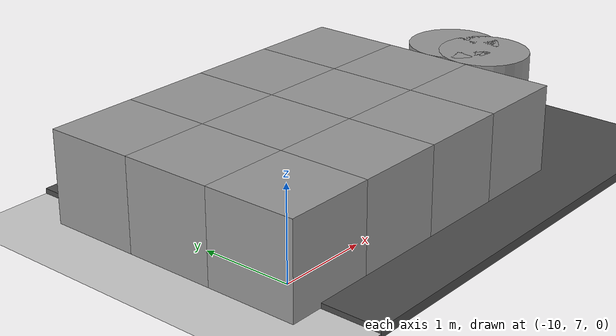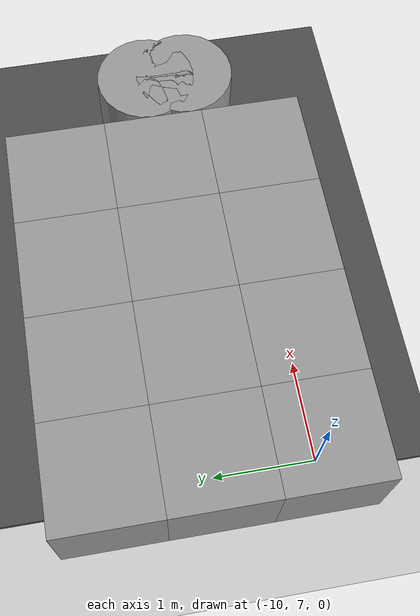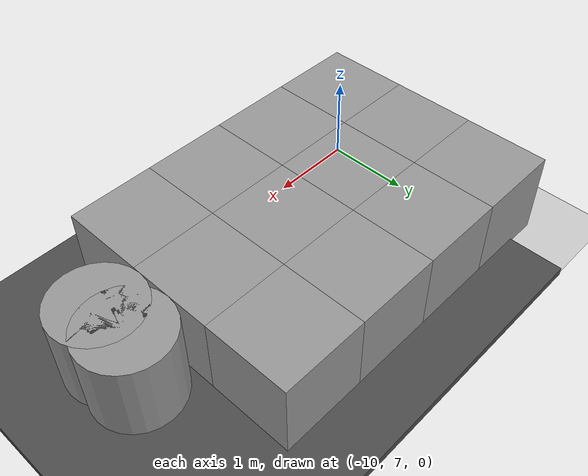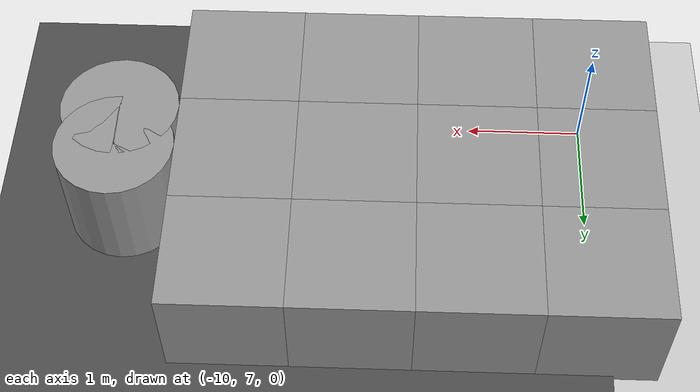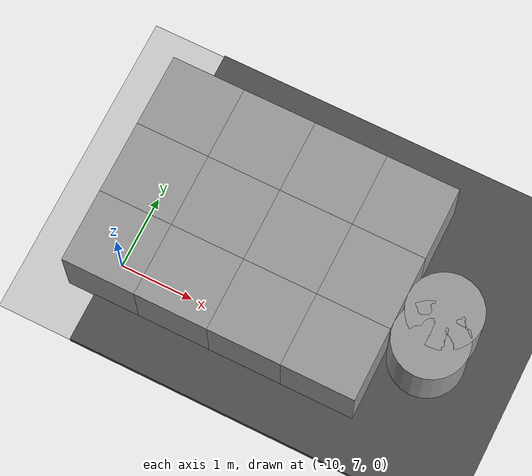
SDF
<sdf version="1.6">
 <world name="default">
  <model name="ground_plane">
   <static>1</static>
   <link name="link">
    <collision name="collision">
     <geometry><plane><normal>0 0 1</normal><size>100 100</size></plane></geometry>
     <surface><friction><ode><mu>100</mu><mu2>50</mu2></ode></friction></surface>
    </collision>
    <visual name="visual">
     <cast_shadows>0</cast_shadows>
     <geometry><plane><normal>0 0 1</normal><size>100 100</size></plane></geometry>
     <material>
      <script><uri>file://media/materials/scripts/gazebo.material</uri><name>Gazebo/Grey</name></script>
     </material>
    </visual>
   </link>
  </model>
  <model name="asphalt_plane">
   <static>1</static>
   <link name="link">
    <collision name="collision"><geometry><box><size>20 20 0.1</size></box></geometry></collision>
    <visual name="visual">
     <cast_shadows>0</cast_shadows>
     <geometry><box><size>20 20 0.1</size></box></geometry>
     <material>
      <script>
       <uri>model://asphalt_plane/materials/scripts</uri>
       <uri>model://asphalt_plane/materials/textures</uri>
       <name>vrc/asphalt</name>
      </script>
     </material>
    </visual>
   </link>
   <pose>-0.132526 12.4193 0 0 -0 0</pose>
  </model>
  <model name="car_0">
   <link name="link_0">
    <pose>-0.5 -0.883748 0 0 -0 0</pose>
    <inertial>
     <mass>1</mass>
     <inertia>
      <ixx>0.166667</ixx>
      <ixy>0</ixy>
      <ixz>0</ixz>
      <iyy>0.166667</iyy>
      <iyz>0</iyz>
      <izz>0.166667</izz>
     </inertia>
    </inertial>
    <visual name="visual">
     <geometry><box><size>1 1 1</size></box></geometry>
     <material>
      <lighting>1</lighting>
      <script><uri>file://media/materials/scripts/gazebo.material</uri><name>Gazebo/Grey</name></script>
      <ambient>0.3 0.3 0.3 1</ambient>
      <diffuse>0.7 0.7 0.7 1</diffuse>
      <specular>0.01 0.01 0.01 1</specular>
      <emissive>0 0 0 1</emissive>
     </material>
    </visual>
    <collision name="collision">
     <geometry><box><size>1 1 1</size></box></geometry>
     <surface>
      <friction>
       <ode><mu>1</mu><mu2>1</mu2><fdir1>0 0 0</fdir1><slip1>0</slip1><slip2>0</slip2></ode>
       <torsional>
        <coefficient>1</coefficient>
        <patch_radius>0</patch_radius>
        <surface_radius>0</surface_radius>
        <use_patch_radius>1</use_patch_radius>
        <ode><slip>0</slip></ode>
       </torsional>
      </friction>
      <bounce><restitution_coefficient>0</restitution_coefficient><threshold>1e+06</threshold></bounce>
      <contact>
       <collide_without_contact>0</collide_without_contact>
       <collide_without_contact_bitmask>1</collide_without_contact_bitmask>
       <collide_bitmask>1</collide_bitmask>
       <ode>
        <soft_cfm>0</soft_cfm>
        <soft_erp>0.2</soft_erp>
        <kp>1e+13</kp>
        <kd>1</kd>
        <max_vel>0.01</max_vel>
        <min_depth>0</min_depth>
       </ode>
       <bullet>
        <split_impulse>1</split_impulse>
        <split_impulse_penetration_threshold>-0.01</split_impulse_penetration_threshold>
        <soft_cfm>0</soft_cfm>
        <soft_erp>0.2</soft_erp>
        <kp>1e+13</kp>
        <kd>1</kd>
       </bullet>
      </contact>
     </surface>
    </collision>
   </link>
   <link name="link_1">
    <pose>0.5 -0.883748 0 0 -0 0</pose>
    <inertial>
     <mass>1</mass>
     <inertia>
      <ixx>0.166667</ixx>
      <ixy>0</ixy>
      <ixz>0</ixz>
      <iyy>0.166667</iyy>
      <iyz>0</iyz>
      <izz>0.166667</izz>
     </inertia>
    </inertial>
    <visual name="visual">
     <geometry><box><size>1 1 1</size></box></geometry>
     <material>
      <lighting>1</lighting>
      <script><uri>file://media/materials/scripts/gazebo.material</uri><name>Gazebo/Grey</name></script>
      <ambient>0.3 0.3 0.3 1</ambient>
      <diffuse>0.7 0.7 0.7 1</diffuse>
      <specular>0.01 0.01 0.01 1</specular>
      <emissive>0 0 0 1</emissive>
     </material>
    </visual>
    <collision name="collision">
     <geometry><box><size>1 1 1</size></box></geometry>
     <surface>
      <friction>
       <ode><mu>1</mu><mu2>1</mu2><fdir1>0 0 0</fdir1><slip1>0</slip1><slip2>0</slip2></ode>
       <torsional>
        <coefficient>1</coefficient>
        <patch_radius>0</patch_radius>
        <surface_radius>0</surface_radius>
        <use_patch_radius>1</use_patch_radius>
        <ode><slip>0</slip></ode>
       </torsional>
      </friction>
      <bounce><restitution_coefficient>0</restitution_coefficient><threshold>1e+06</threshold></bounce>
      <contact>
       <collide_without_contact>0</collide_without_contact>
       <collide_without_contact_bitmask>1</collide_without_contact_bitmask>
       <collide_bitmask>1</collide_bitmask>
       <ode>
        <soft_cfm>0</soft_cfm>
        <soft_erp>0.2</soft_erp>
        <kp>1e+13</kp>
        <kd>1</kd>
        <max_vel>0.01</max_vel>
        <min_depth>0</min_depth>
       </ode>
       <bullet>
        <split_impulse>1</split_impulse>
        <split_impulse_penetration_threshold>-0.01</split_impulse_penetration_threshold>
        <soft_cfm>0</soft_cfm>
        <soft_erp>0.2</soft_erp>
        <kp>1e+13</kp>
        <kd>1</kd>
       </bullet>
      </contact>
     </surface>
    </collision>
   </link>
   <link name="link_12">
    <pose>-1.5 0.11625 0 0 -0 0</pose>
    <inertial>
     <mass>1</mass>
     <inertia>
      <ixx>0.166667</ixx>
      <ixy>0</ixy>
      <ixz>0</ixz>
      <iyy>0.166667</iyy>
      <iyz>0</iyz>
      <izz>0.166667</izz>
     </inertia>
    </inertial>
    <visual name="visual">
     <geometry><box><size>1 1 1</size></box></geometry>
     <material>
      <lighting>1</lighting>
      <script><uri>file://media/materials/scripts/gazebo.material</uri><name>Gazebo/Grey</name></script>
      <ambient>0.3 0.3 0.3 1</ambient>
      <diffuse>0.7 0.7 0.7 1</diffuse>
      <specular>0.01 0.01 0.01 1</specular>
      <emissive>0 0 0 1</emissive>
     </material>
    </visual>
    <collision name="collision">
     <geometry><box><size>1 1 1</size></box></geometry>
     <surface>
      <friction>
       <ode><mu>1</mu><mu2>1</mu2><fdir1>0 0 0</fdir1><slip1>0</slip1><slip2>0</slip2></ode>
       <torsional>
        <coefficient>1</coefficient>
        <patch_radius>0</patch_radius>
        <surface_radius>0</surface_radius>
        <use_patch_radius>1</use_patch_radius>
        <ode><slip>0</slip></ode>
       </torsional>
      </friction>
      <bounce><restitution_coefficient>0</restitution_coefficient><threshold>1e+06</threshold></bounce>
      <contact>
       <collide_without_contact>0</collide_without_contact>
       <collide_without_contact_bitmask>1</collide_without_contact_bitmask>
       <collide_bitmask>1</collide_bitmask>
       <ode>
        <soft_cfm>0</soft_cfm>
        <soft_erp>0.2</soft_erp>
        <kp>1e+13</kp>
        <kd>1</kd>
        <max_vel>0.01</max_vel>
        <min_depth>0</min_depth>
       </ode>
       <bullet>
        <split_impulse>1</split_impulse>
        <split_impulse_penetration_threshold>-0.01</split_impulse_penetration_threshold>
        <soft_cfm>0</soft_cfm>
        <soft_erp>0.2</soft_erp>
        <kp>1e+13</kp>
        <kd>1</kd>
       </bullet>
      </contact>
     </surface>
    </collision>
   </link>
   <link name="link_13">
    <pose>1.5 1.11625 0 0 -0 0</pose>
    <inertial>
     <mass>1</mass>
     <inertia>
      <ixx>0.166667</ixx>
      <ixy>0</ixy>
      <ixz>0</ixz>
      <iyy>0.166667</iyy>
      <iyz>0</iyz>
      <izz>0.166667</izz>
     </inertia>
    </inertial>
    <visual name="visual">
     <geometry><box><size>1 1 1</size></box></geometry>
     <material>
      <lighting>1</lighting>
      <script><uri>file://media/materials/scripts/gazebo.material</uri><name>Gazebo/Grey</name></script>
      <ambient>0.3 0.3 0.3 1</ambient>
      <diffuse>0.7 0.7 0.7 1</diffuse>
      <specular>0.01 0.01 0.01 1</specular>
      <emissive>0 0 0 1</emissive>
     </material>
    </visual>
    <collision name="collision">
     <geometry><box><size>1 1 1</size></box></geometry>
     <surface>
      <friction>
       <ode><mu>1</mu><mu2>1</mu2><fdir1>0 0 0</fdir1><slip1>0</slip1><slip2>0</slip2></ode>
       <torsional>
        <coefficient>1</coefficient>
        <patch_radius>0</patch_radius>
        <surface_radius>0</surface_radius>
        <use_patch_radius>1</use_patch_radius>
        <ode><slip>0</slip></ode>
       </torsional>
      </friction>
      <bounce><restitution_coefficient>0</restitution_coefficient><threshold>1e+06</threshold></bounce>
      <contact>
       <collide_without_contact>0</collide_without_contact>
       <collide_without_contact_bitmask>1</collide_without_contact_bitmask>
       <collide_bitmask>1</collide_bitmask>
       <ode>
        <soft_cfm>0</soft_cfm>
        <soft_erp>0.2</soft_erp>
        <kp>1e+13</kp>
        <kd>1</kd>
        <max_vel>0.01</max_vel>
        <min_depth>0</min_depth>
       </ode>
       <bullet>
        <split_impulse>1</split_impulse>
        <split_impulse_penetration_threshold>-0.01</split_impulse_penetration_threshold>
        <soft_cfm>0</soft_cfm>
        <soft_erp>0.2</soft_erp>
        <kp>1e+13</kp>
        <kd>1</kd>
       </bullet>
      </contact>
     </surface>
    </collision>
   </link>
   <link name="link_14">
    <pose>0.5 1.11625 0 0 -0 0</pose>
    <inertial>
     <mass>1</mass>
     <inertia>
      <ixx>0.166667</ixx>
      <ixy>0</ixy>
      <ixz>0</ixz>
      <iyy>0.166667</iyy>
      <iyz>0</iyz>
      <izz>0.166667</izz>
     </inertia>
    </inertial>
    <visual name="visual">
     <geometry><box><size>1 1 1</size></box></geometry>
     <material>
      <lighting>1</lighting>
      <script><uri>file://media/materials/scripts/gazebo.material</uri><name>Gazebo/Grey</name></script>
      <ambient>0.3 0.3 0.3 1</ambient>
      <diffuse>0.7 0.7 0.7 1</diffuse>
      <specular>0.01 0.01 0.01 1</specular>
      <emissive>0 0 0 1</emissive>
     </material>
    </visual>
    <collision name="collision">
     <geometry><box><size>1 1 1</size></box></geometry>
     <surface>
      <friction>
       <ode><mu>1</mu><mu2>1</mu2><fdir1>0 0 0</fdir1><slip1>0</slip1><slip2>0</slip2></ode>
       <torsional>
        <coefficient>1</coefficient>
        <patch_radius>0</patch_radius>
        <surface_radius>0</surface_radius>
        <use_patch_radius>1</use_patch_radius>
        <ode><slip>0</slip></ode>
       </torsional>
      </friction>
      <bounce><restitution_coefficient>0</restitution_coefficient><threshold>1e+06</threshold></bounce>
      <contact>
       <collide_without_contact>0</collide_without_contact>
       <collide_without_contact_bitmask>1</collide_without_contact_bitmask>
       <collide_bitmask>1</collide_bitmask>
       <ode>
        <soft_cfm>0</soft_cfm>
        <soft_erp>0.2</soft_erp>
        <kp>1e+13</kp>
        <kd>1</kd>
        <max_vel>0.01</max_vel>
        <min_depth>0</min_depth>
       </ode>
       <bullet>
        <split_impulse>1</split_impulse>
        <split_impulse_penetration_threshold>-0.01</split_impulse_penetration_threshold>
        <soft_cfm>0</soft_cfm>
        <soft_erp>0.2</soft_erp>
        <kp>1e+13</kp>
        <kd>1</kd>
       </bullet>
      </contact>
     </surface>
    </collision>
   </link>
   <link name="link_15">
    <pose>-0.5 1.11625 0 0 -0 0</pose>
    <inertial>
     <mass>1</mass>
     <inertia>
      <ixx>0.166667</ixx>
      <ixy>0</ixy>
      <ixz>0</ixz>
      <iyy>0.166667</iyy>
      <iyz>0</iyz>
      <izz>0.166667</izz>
     </inertia>
    </inertial>
    <visual name="visual">
     <geometry><box><size>1 1 1</size></box></geometry>
     <material>
      <lighting>1</lighting>
      <script><uri>file://media/materials/scripts/gazebo.material</uri><name>Gazebo/Grey</name></script>
      <ambient>0.3 0.3 0.3 1</ambient>
      <diffuse>0.7 0.7 0.7 1</diffuse>
      <specular>0.01 0.01 0.01 1</specular>
      <emissive>0 0 0 1</emissive>
     </material>
    </visual>
    <collision name="collision">
     <geometry><box><size>1 1 1</size></box></geometry>
     <surface>
      <friction>
       <ode><mu>1</mu><mu2>1</mu2><fdir1>0 0 0</fdir1><slip1>0</slip1><slip2>0</slip2></ode>
       <torsional>
        <coefficient>1</coefficient>
        <patch_radius>0</patch_radius>
        <surface_radius>0</surface_radius>
        <use_patch_radius>1</use_patch_radius>
        <ode><slip>0</slip></ode>
       </torsional>
      </friction>
      <bounce><restitution_coefficient>0</restitution_coefficient><threshold>1e+06</threshold></bounce>
      <contact>
       <collide_without_contact>0</collide_without_contact>
       <collide_without_contact_bitmask>1</collide_without_contact_bitmask>
       <collide_bitmask>1</collide_bitmask>
       <ode>
        <soft_cfm>0</soft_cfm>
        <soft_erp>0.2</soft_erp>
        <kp>1e+13</kp>
        <kd>1</kd>
        <max_vel>0.01</max_vel>
        <min_depth>0</min_depth>
       </ode>
       <bullet>
        <split_impulse>1</split_impulse>
        <split_impulse_penetration_threshold>-0.01</split_impulse_penetration_threshold>
        <soft_cfm>0</soft_cfm>
        <soft_erp>0.2</soft_erp>
        <kp>1e+13</kp>
        <kd>1</kd>
       </bullet>
      </contact>
     </surface>
    </collision>
   </link>
   <link name="link_16">
    <pose>-1.5 1.11625 0 0 -0 0</pose>
    <inertial>
     <mass>1</mass>
     <inertia>
      <ixx>0.166667</ixx>
      <ixy>0</ixy>
      <ixz>0</ixz>
      <iyy>0.166667</iyy>
      <iyz>0</iyz>
      <izz>0.166667</izz>
     </inertia>
    </inertial>
    <visual name="visual">
     <geometry><box><size>1 1 1</size></box></geometry>
     <material>
      <lighting>1</lighting>
      <script><uri>file://media/materials/scripts/gazebo.material</uri><name>Gazebo/Grey</name></script>
      <ambient>0.3 0.3 0.3 1</ambient>
      <diffuse>0.7 0.7 0.7 1</diffuse>
      <specular>0.01 0.01 0.01 1</specular>
      <emissive>0 0 0 1</emissive>
     </material>
    </visual>
    <collision name="collision">
     <geometry><box><size>1 1 1</size></box></geometry>
     <surface>
      <friction>
       <ode><mu>1</mu><mu2>1</mu2><fdir1>0 0 0</fdir1><slip1>0</slip1><slip2>0</slip2></ode>
       <torsional>
        <coefficient>1</coefficient>
        <patch_radius>0</patch_radius>
        <surface_radius>0</surface_radius>
        <use_patch_radius>1</use_patch_radius>
        <ode><slip>0</slip></ode>
       </torsional>
      </friction>
      <bounce><restitution_coefficient>0</restitution_coefficient><threshold>1e+06</threshold></bounce>
      <contact>
       <collide_without_contact>0</collide_without_contact>
       <collide_without_contact_bitmask>1</collide_without_contact_bitmask>
       <collide_bitmask>1</collide_bitmask>
       <ode>
        <soft_cfm>0</soft_cfm>
        <soft_erp>0.2</soft_erp>
        <kp>1e+13</kp>
        <kd>1</kd>
        <max_vel>0.01</max_vel>
        <min_depth>0</min_depth>
       </ode>
       <bullet>
        <split_impulse>1</split_impulse>
        <split_impulse_penetration_threshold>-0.01</split_impulse_penetration_threshold>
        <soft_cfm>0</soft_cfm>
        <soft_erp>0.2</soft_erp>
        <kp>1e+13</kp>
        <kd>1</kd>
       </bullet>
      </contact>
     </surface>
    </collision>
   </link>
   <link name="link_19">
    <pose>2.5 -0.287812 0 0 -0 0</pose>
    <inertial>
     <mass>1</mass>
     <inertia><ixx>0.145833</ixx><ixy>0</ixy><ixz>0</ixz><iyy>0.145833</iyy><iyz>0</iyz><izz>0.125</izz></inertia>
    </inertial>
    <visual name="visual">
     <geometry><cylinder><radius>0.5</radius><length>1</length></cylinder></geometry>
     <material>
      <lighting>1</lighting>
      <script><uri>file://media/materials/scripts/gazebo.material</uri><name>Gazebo/Grey</name></script>
      <ambient>0.3 0.3 0.3 1</ambient>
      <diffuse>0.7 0.7 0.7 1</diffuse>
      <specular>0.01 0.01 0.01 1</specular>
      <emissive>0 0 0 1</emissive>
     </material>
    </visual>
    <collision name="collision">
     <geometry><cylinder><radius>0.5</radius><length>1</length></cylinder></geometry>
     <surface>
      <friction>
       <ode><mu>1</mu><mu2>1</mu2><fdir1>0 0 0</fdir1><slip1>0</slip1><slip2>0</slip2></ode>
       <torsional>
        <coefficient>1</coefficient>
        <patch_radius>0</patch_radius>
        <surface_radius>0</surface_radius>
        <use_patch_radius>1</use_patch_radius>
        <ode><slip>0</slip></ode>
       </torsional>
      </friction>
      <bounce><restitution_coefficient>0</restitution_coefficient><threshold>1e+06</threshold></bounce>
      <contact>
       <collide_without_contact>0</collide_without_contact>
       <collide_without_contact_bitmask>1</collide_without_contact_bitmask>
       <collide_bitmask>1</collide_bitmask>
       <ode>
        <soft_cfm>0</soft_cfm>
        <soft_erp>0.2</soft_erp>
        <kp>1e+13</kp>
        <kd>1</kd>
        <max_vel>0.01</max_vel>
        <min_depth>0</min_depth>
       </ode>
       <bullet>
        <split_impulse>1</split_impulse>
        <split_impulse_penetration_threshold>-0.01</split_impulse_penetration_threshold>
        <soft_cfm>0</soft_cfm>
        <soft_erp>0.2</soft_erp>
        <kp>1e+13</kp>
        <kd>1</kd>
       </bullet>
      </contact>
     </surface>
    </collision>
   </link>
   <link name="link_2">
    <pose>1.5 -0.883748 0 0 -0 0</pose>
    <inertial>
     <mass>1</mass>
     <inertia>
      <ixx>0.166667</ixx>
      <ixy>0</ixy>
      <ixz>0</ixz>
      <iyy>0.166667</iyy>
      <iyz>0</iyz>
      <izz>0.166667</izz>
     </inertia>
    </inertial>
    <visual name="visual">
     <geometry><box><size>1 1 1</size></box></geometry>
     <material>
      <lighting>1</lighting>
      <script><uri>file://media/materials/scripts/gazebo.material</uri><name>Gazebo/Grey</name></script>
      <ambient>0.3 0.3 0.3 1</ambient>
      <diffuse>0.7 0.7 0.7 1</diffuse>
      <specular>0.01 0.01 0.01 1</specular>
      <emissive>0 0 0 1</emissive>
     </material>
    </visual>
    <collision name="collision">
     <geometry><box><size>1 1 1</size></box></geometry>
     <surface>
      <friction>
       <ode><mu>1</mu><mu2>1</mu2><fdir1>0 0 0</fdir1><slip1>0</slip1><slip2>0</slip2></ode>
       <torsional>
        <coefficient>1</coefficient>
        <patch_radius>0</patch_radius>
        <surface_radius>0</surface_radius>
        <use_patch_radius>1</use_patch_radius>
        <ode><slip>0</slip></ode>
       </torsional>
      </friction>
      <bounce><restitution_coefficient>0</restitution_coefficient><threshold>1e+06</threshold></bounce>
      <contact>
       <collide_without_contact>0</collide_without_contact>
       <collide_without_contact_bitmask>1</collide_without_contact_bitmask>
       <collide_bitmask>1</collide_bitmask>
       <ode>
        <soft_cfm>0</soft_cfm>
        <soft_erp>0.2</soft_erp>
        <kp>1e+13</kp>
        <kd>1</kd>
        <max_vel>0.01</max_vel>
        <min_depth>0</min_depth>
       </ode>
       <bullet>
        <split_impulse>1</split_impulse>
        <split_impulse_penetration_threshold>-0.01</split_impulse_penetration_threshold>
        <soft_cfm>0</soft_cfm>
        <soft_erp>0.2</soft_erp>
        <kp>1e+13</kp>
        <kd>1</kd>
       </bullet>
      </contact>
     </surface>
    </collision>
   </link>
   <link name="link_20">
    <pose>2.5 0.11625 0 0 -0 0</pose>
    <inertial>
     <mass>1</mass>
     <inertia><ixx>0.145833</ixx><ixy>0</ixy><ixz>0</ixz><iyy>0.145833</iyy><iyz>0</iyz><izz>0.125</izz></inertia>
    </inertial>
    <visual name="visual">
     <geometry><cylinder><radius>0.5</radius><length>1</length></cylinder></geometry>
     <material>
      <lighting>1</lighting>
      <script><uri>file://media/materials/scripts/gazebo.material</uri><name>Gazebo/Grey</name></script>
      <ambient>0.3 0.3 0.3 1</ambient>
      <diffuse>0.7 0.7 0.7 1</diffuse>
      <specular>0.01 0.01 0.01 1</specular>
      <emissive>0 0 0 1</emissive>
     </material>
    </visual>
    <collision name="collision">
     <geometry><cylinder><radius>0.5</radius><length>1</length></cylinder></geometry>
     <surface>
      <friction>
       <ode><mu>1</mu><mu2>1</mu2><fdir1>0 0 0</fdir1><slip1>0</slip1><slip2>0</slip2></ode>
       <torsional>
        <coefficient>1</coefficient>
        <patch_radius>0</patch_radius>
        <surface_radius>0</surface_radius>
        <use_patch_radius>1</use_patch_radius>
        <ode><slip>0</slip></ode>
       </torsional>
      </friction>
      <bounce><restitution_coefficient>0</restitution_coefficient><threshold>1e+06</threshold></bounce>
      <contact>
       <collide_without_contact>0</collide_without_contact>
       <collide_without_contact_bitmask>1</collide_without_contact_bitmask>
       <collide_bitmask>1</collide_bitmask>
       <ode>
        <soft_cfm>0</soft_cfm>
        <soft_erp>0.2</soft_erp>
        <kp>1e+13</kp>
        <kd>1</kd>
        <max_vel>0.01</max_vel>
        <min_depth>0</min_depth>
       </ode>
       <bullet>
        <split_impulse>1</split_impulse>
        <split_impulse_penetration_threshold>-0.01</split_impulse_penetration_threshold>
        <soft_cfm>0</soft_cfm>
        <soft_erp>0.2</soft_erp>
        <kp>1e+13</kp>
        <kd>1</kd>
       </bullet>
      </contact>
     </surface>
    </collision>
   </link>
   <link name="link_3">
    <pose>1.5 0.116252 0 0 -0 0</pose>
    <inertial>
     <mass>1</mass>
     <inertia>
      <ixx>0.166667</ixx>
      <ixy>0</ixy>
      <ixz>0</ixz>
      <iyy>0.166667</iyy>
      <iyz>0</iyz>
      <izz>0.166667</izz>
     </inertia>
    </inertial>
    <visual name="visual">
     <geometry><box><size>1 1 1</size></box></geometry>
     <material>
      <lighting>1</lighting>
      <script><uri>file://media/materials/scripts/gazebo.material</uri><name>Gazebo/Grey</name></script>
      <ambient>0.3 0.3 0.3 1</ambient>
      <diffuse>0.7 0.7 0.7 1</diffuse>
      <specular>0.01 0.01 0.01 1</specular>
      <emissive>0 0 0 1</emissive>
     </material>
    </visual>
    <collision name="collision">
     <geometry><box><size>1 1 1</size></box></geometry>
     <surface>
      <friction>
       <ode><mu>1</mu><mu2>1</mu2><fdir1>0 0 0</fdir1><slip1>0</slip1><slip2>0</slip2></ode>
       <torsional>
        <coefficient>1</coefficient>
        <patch_radius>0</patch_radius>
        <surface_radius>0</surface_radius>
        <use_patch_radius>1</use_patch_radius>
        <ode><slip>0</slip></ode>
       </torsional>
      </friction>
      <bounce><restitution_coefficient>0</restitution_coefficient><threshold>1e+06</threshold></bounce>
      <contact>
       <collide_without_contact>0</collide_without_contact>
       <collide_without_contact_bitmask>1</collide_without_contact_bitmask>
       <collide_bitmask>1</collide_bitmask>
       <ode>
        <soft_cfm>0</soft_cfm>
        <soft_erp>0.2</soft_erp>
        <kp>1e+13</kp>
        <kd>1</kd>
        <max_vel>0.01</max_vel>
        <min_depth>0</min_depth>
       </ode>
       <bullet>
        <split_impulse>1</split_impulse>
        <split_impulse_penetration_threshold>-0.01</split_impulse_penetration_threshold>
        <soft_cfm>0</soft_cfm>
        <soft_erp>0.2</soft_erp>
        <kp>1e+13</kp>
        <kd>1</kd>
       </bullet>
      </contact>
     </surface>
    </collision>
   </link>
   <link name="link_4">
    <pose>0.5 0.116252 0 0 -0 0</pose>
    <inertial>
     <mass>1</mass>
     <inertia>
      <ixx>0.166667</ixx>
      <ixy>0</ixy>
      <ixz>0</ixz>
      <iyy>0.166667</iyy>
      <iyz>0</iyz>
      <izz>0.166667</izz>
     </inertia>
    </inertial>
    <visual name="visual">
     <geometry><box><size>1 1 1</size></box></geometry>
     <material>
      <lighting>1</lighting>
      <script><uri>file://media/materials/scripts/gazebo.material</uri><name>Gazebo/Grey</name></script>
      <ambient>0.3 0.3 0.3 1</ambient>
      <diffuse>0.7 0.7 0.7 1</diffuse>
      <specular>0.01 0.01 0.01 1</specular>
      <emissive>0 0 0 1</emissive>
     </material>
    </visual>
    <collision name="collision">
     <geometry><box><size>1 1 1</size></box></geometry>
     <surface>
      <friction>
       <ode><mu>1</mu><mu2>1</mu2><fdir1>0 0 0</fdir1><slip1>0</slip1><slip2>0</slip2></ode>
       <torsional>
        <coefficient>1</coefficient>
        <patch_radius>0</patch_radius>
        <surface_radius>0</surface_radius>
        <use_patch_radius>1</use_patch_radius>
        <ode><slip>0</slip></ode>
       </torsional>
      </friction>
      <bounce><restitution_coefficient>0</restitution_coefficient><threshold>1e+06</threshold></bounce>
      <contact>
       <collide_without_contact>0</collide_without_contact>
       <collide_without_contact_bitmask>1</collide_without_contact_bitmask>
       <collide_bitmask>1</collide_bitmask>
       <ode>
        <soft_cfm>0</soft_cfm>
        <soft_erp>0.2</soft_erp>
        <kp>1e+13</kp>
        <kd>1</kd>
        <max_vel>0.01</max_vel>
        <min_depth>0</min_depth>
       </ode>
       <bullet>
        <split_impulse>1</split_impulse>
        <split_impulse_penetration_threshold>-0.01</split_impulse_penetration_threshold>
        <soft_cfm>0</soft_cfm>
        <soft_erp>0.2</soft_erp>
        <kp>1e+13</kp>
        <kd>1</kd>
       </bullet>
      </contact>
     </surface>
    </collision>
   </link>
   <link name="link_5">
    <pose>-0.5 0.116252 0 0 -0 0</pose>
    <inertial>
     <mass>1</mass>
     <inertia>
      <ixx>0.166667</ixx>
      <ixy>0</ixy>
      <ixz>0</ixz>
      <iyy>0.166667</iyy>
      <iyz>0</iyz>
      <izz>0.166667</izz>
     </inertia>
    </inertial>
    <visual name="visual">
     <geometry><box><size>1 1 1</size></box></geometry>
     <material>
      <lighting>1</lighting>
      <script><uri>file://media/materials/scripts/gazebo.material</uri><name>Gazebo/Grey</name></script>
      <ambient>0.3 0.3 0.3 1</ambient>
      <diffuse>0.7 0.7 0.7 1</diffuse>
      <specular>0.01 0.01 0.01 1</specular>
      <emissive>0 0 0 1</emissive>
     </material>
    </visual>
    <collision name="collision">
     <geometry><box><size>1 1 1</size></box></geometry>
     <surface>
      <friction>
       <ode><mu>1</mu><mu2>1</mu2><fdir1>0 0 0</fdir1><slip1>0</slip1><slip2>0</slip2></ode>
       <torsional>
        <coefficient>1</coefficient>
        <patch_radius>0</patch_radius>
        <surface_radius>0</surface_radius>
        <use_patch_radius>1</use_patch_radius>
        <ode><slip>0</slip></ode>
       </torsional>
      </friction>
      <bounce><restitution_coefficient>0</restitution_coefficient><threshold>1e+06</threshold></bounce>
      <contact>
       <collide_without_contact>0</collide_without_contact>
       <collide_without_contact_bitmask>1</collide_without_contact_bitmask>
       <collide_bitmask>1</collide_bitmask>
       <ode>
        <soft_cfm>0</soft_cfm>
        <soft_erp>0.2</soft_erp>
        <kp>1e+13</kp>
        <kd>1</kd>
        <max_vel>0.01</max_vel>
        <min_depth>0</min_depth>
       </ode>
       <bullet>
        <split_impulse>1</split_impulse>
        <split_impulse_penetration_threshold>-0.01</split_impulse_penetration_threshold>
        <soft_cfm>0</soft_cfm>
        <soft_erp>0.2</soft_erp>
        <kp>1e+13</kp>
        <kd>1</kd>
       </bullet>
      </contact>
     </surface>
    </collision>
   </link>
   <link name="link_9">
    <pose>-1.5 -0.883748 0 0 -0 0</pose>
    <inertial>
     <mass>1</mass>
     <inertia>
      <ixx>0.166667</ixx>
      <ixy>0</ixy>
      <ixz>0</ixz>
      <iyy>0.166667</iyy>
      <iyz>0</iyz>
      <izz>0.166667</izz>
     </inertia>
    </inertial>
    <visual name="visual">
     <geometry><box><size>1 1 1</size></box></geometry>
     <material>
      <lighting>1</lighting>
      <script><uri>file://media/materials/scripts/gazebo.material</uri><name>Gazebo/Grey</name></script>
      <ambient>0.3 0.3 0.3 1</ambient>
      <diffuse>0.7 0.7 0.7 1</diffuse>
      <specular>0.01 0.01 0.01 1</specular>
      <emissive>0 0 0 1</emissive>
     </material>
    </visual>
    <collision name="collision">
     <geometry><box><size>1 1 1</size></box></geometry>
     <surface>
      <friction>
       <ode><mu>1</mu><mu2>1</mu2><fdir1>0 0 0</fdir1><slip1>0</slip1><slip2>0</slip2></ode>
       <torsional>
        <coefficient>1</coefficient>
        <patch_radius>0</patch_radius>
        <surface_radius>0</surface_radius>
        <use_patch_radius>1</use_patch_radius>
        <ode><slip>0</slip></ode>
       </torsional>
      </friction>
      <bounce><restitution_coefficient>0</restitution_coefficient><threshold>1e+06</threshold></bounce>
      <contact>
       <collide_without_contact>0</collide_without_contact>
       <collide_without_contact_bitmask>1</collide_without_contact_bitmask>
       <collide_bitmask>1</collide_bitmask>
       <ode>
        <soft_cfm>0</soft_cfm>
        <soft_erp>0.2</soft_erp>
        <kp>1e+13</kp>
        <kd>1</kd>
        <max_vel>0.01</max_vel>
        <min_depth>0</min_depth>
       </ode>
       <bullet>
        <split_impulse>1</split_impulse>
        <split_impulse_penetration_threshold>-0.01</split_impulse_penetration_threshold>
        <soft_cfm>0</soft_cfm>
        <soft_erp>0.2</soft_erp>
        <kp>1e+13</kp>
        <kd>1</kd>
       </bullet>
      </contact>
     </surface>
    </collision>
   </link>
   <static>1</static>
   <pose>-8.5 7.88375 0.5 0 -0 0</pose>
  </model>
 </world>
</sdf>
